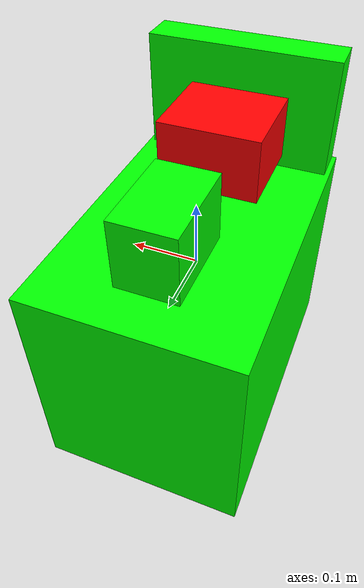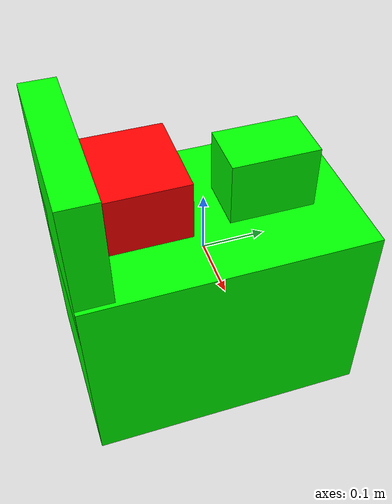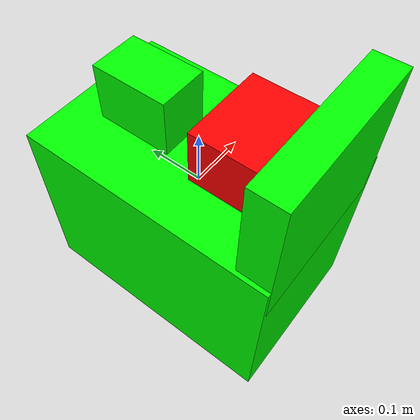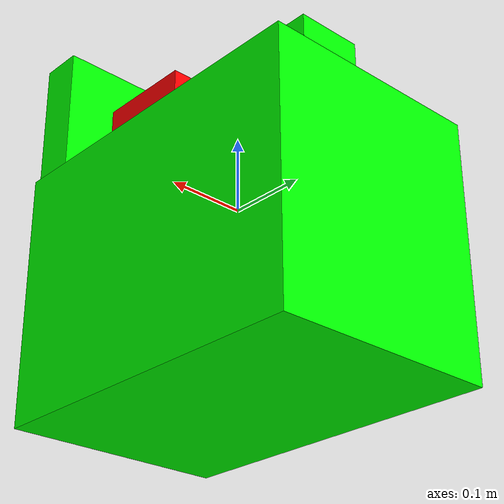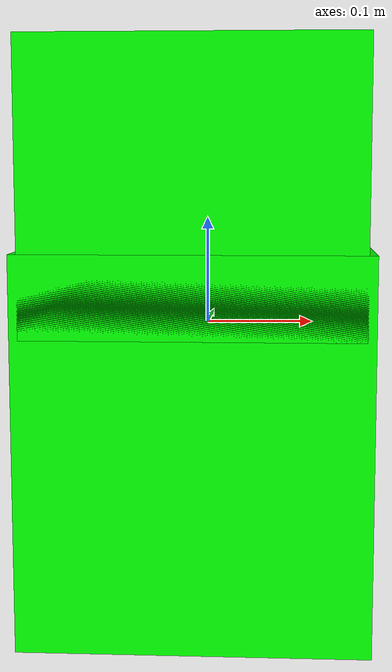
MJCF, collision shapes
<mujoco model="coffee_machine_19">
  <compiler autolimits="true" boundmass="0.01" angle="radian"/>
  <default>
    <default class="/">
      <default class="__VISUAL_MJT__">
        <geom contype="0" conaffinity="0" group="0"/>
      </default>
      <default class="__STRUCTURAL_MJT__">
        <geom contype="8" conaffinity="15" group="4" friction="0.90000000000000002 0.90000000000000002 0.001" solref="0.025000000000000001 1" solimp="0.998 0.998 0.001"/>
      </default>
      <default class="__DYNAMIC_MJT__">
        <geom contype="1" conaffinity="15" group="4" friction="0.90000000000000002 0.90000000000000002 0.001" solref="0.025000000000000001 1" solimp="0.998 0.998 0.001"/>
      </default>
    </default>
  </default>
  <asset>
    <material name="material_coffee_machine_backup_mat" class="/" specular="0.5" shininess="0.5" rgba="0.5 0.5 0.5 1"/>
    <material name="material_Coffee_Machine_Readout_Mat_Off" class="/" specular="0.5" shininess="0.5" rgba="0 0 0 1"/>
    <texture name="Coffee_Machine_Decal_Mat" type="2d" file="Coffee_Machine_Decal_AlbedoTransparency.png"/>
    <material name="material_Coffee_Machine_Decal_Mat" class="/" texture="Coffee_Machine_Decal_Mat" specular="0.5" shininess="0.5" rgba="1 1 1 1"/>
    <texture name="Coffee_Machine_Metal_Mat" type="2d" file="MetalBumpy_AlbedoTransparency.png"/>
    <material name="material_Coffee_Machine_Metal_Mat" class="/" texture="Coffee_Machine_Metal_Mat" specular="0.5" shininess="0.5" rgba="0.66176469999999998 0.66176469999999998 0.66176469999999998 1"/>
    <texture name="Coffee_Machine_Secondary4_Color_Mat" type="2d" file="BrushedIron_AlbedoTransparency.png"/>
    <material name="material_Coffee_Machine_Secondary4_Color_Mat" class="/" texture="Coffee_Machine_Secondary4_Color_Mat" specular="0.5" shininess="0.5" rgba="0.72058820000000001 0.72058820000000001 0.72058820000000001 1"/>
    <texture name="Coffee_Machine_Primary2_Color_Mat" type="2d" file="BumpyPlastic_Albedo.png"/>
    <material name="material_Coffee_Machine_Primary2_Color_Mat" class="/" texture="Coffee_Machine_Primary2_Color_Mat" specular="0.5" shininess="0.5" rgba="0.6323529 0.46849269999999998 0.29292820000000003 1"/>
    <mesh name="coffee_machine_19_coffee_machine_9_0" class="/" file="coffee_machine_19_coffee_machine_9/coffee_machine_19_coffee_machine_9_0.obj" scale="1 1 1"/>
    <mesh name="coffee_machine_19_coffee_machine_9_1" class="/" file="coffee_machine_19_coffee_machine_9/coffee_machine_19_coffee_machine_9_1.obj" scale="1 1 1"/>
    <mesh name="coffee_machine_19_coffee_machine_9_2" class="/" file="coffee_machine_19_coffee_machine_9/coffee_machine_19_coffee_machine_9_2.obj" scale="1 1 1"/>
    <mesh name="coffee_machine_19_coffee_machine_9_3" class="/" file="coffee_machine_19_coffee_machine_9/coffee_machine_19_coffee_machine_9_3.obj" scale="1 1 1"/>
    <mesh name="coffee_machine_19_coffee_machine_9_4" class="/" file="coffee_machine_19_coffee_machine_9/coffee_machine_19_coffee_machine_9_4.obj" scale="1 1 1"/>
    <mesh name="coffee_machine_19_coffee_machine_9_5" class="/" file="coffee_machine_19_coffee_machine_9/coffee_machine_19_coffee_machine_9_5.obj" scale="1 1 1"/>
  </asset>
  <worldbody>
    <body name="coffee_machine_19">
      <joint name="coffee_machine_19_free" class="/" type="free" pos="0 0 0" axis="0 0 1" stiffness="0" range="0 0" armature="0" damping="0.10000000000000001" frictionloss="0"/>
      <body name="coffee_machine_19_coffee_machine_9" pos="-0 -0.22414000000000001 -0.098830000000000001" quat="1 0 0 0">
        <geom name="coffee_machine_19_coffee_machine_9_0" class="__VISUAL_MJT__" type="mesh" material="material_coffee_machine_backup_mat" shellinertia="true" mesh="coffee_machine_19_coffee_machine_9_0"/>
        <geom name="coffee_machine_19_coffee_machine_9_1" class="__VISUAL_MJT__" type="mesh" material="material_Coffee_Machine_Readout_Mat_Off" shellinertia="false" mesh="coffee_machine_19_coffee_machine_9_1"/>
        <geom name="coffee_machine_19_coffee_machine_9_2" class="__VISUAL_MJT__" type="mesh" material="material_Coffee_Machine_Decal_Mat" shellinertia="false" mesh="coffee_machine_19_coffee_machine_9_2"/>
        <geom name="coffee_machine_19_coffee_machine_9_3" class="__VISUAL_MJT__" type="mesh" material="material_Coffee_Machine_Metal_Mat" shellinertia="false" mesh="coffee_machine_19_coffee_machine_9_3"/>
        <geom name="coffee_machine_19_coffee_machine_9_4" class="__VISUAL_MJT__" type="mesh" material="material_Coffee_Machine_Secondary4_Color_Mat" shellinertia="false" mesh="coffee_machine_19_coffee_machine_9_4"/>
        <geom name="coffee_machine_19_coffee_machine_9_5" class="__VISUAL_MJT__" type="mesh" material="material_Coffee_Machine_Primary2_Color_Mat" shellinertia="false" mesh="coffee_machine_19_coffee_machine_9_5"/>
        <site name="coffee_machine_19_Receptacle_0" class="/" type="box" rgba="1 0 0 1" size="0.072666913270950317 0.064732134342193604 0.046757858246564865" pos="-0 0.12173213064670563 0.24300000071525574" quat="1 0 0 0"/>
        <geom name="coffee_machine_19_PrimitiveCollider_0" class="__DYNAMIC_MJT__" type="box" size="0.14721088111400604 0.22414383292198181 0.16523779928684235" rgba="0 1 0 1" pos="-0 0.22414383292198181 0.012384995818138123" quat="1 0 0 0"/>
        <geom name="coffee_machine_19_PrimitiveCollider_1" class="__DYNAMIC_MJT__" type="box" size="0.14014703035354614 0.02771332859992981 0.12108016014099121" rgba="0 1 0 1" pos="-0 0.02771332859992981 0.22944235801696777" quat="1 0 0 0"/>
        <geom name="coffee_machine_19_PrimitiveCollider_2" class="__DYNAMIC_MJT__" type="box" size="0.0437626913189888 0.066836953163146973 0.084854602813720703" rgba="0 1 0 1" pos="-0 0.31800025701522827 0.19321680068969727" quat="1 0 0 0"/>
      </body>
    </body>
  </worldbody>
</mujoco>
